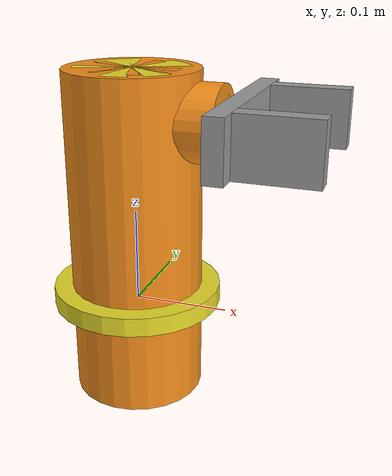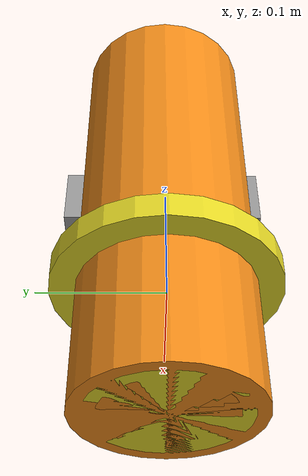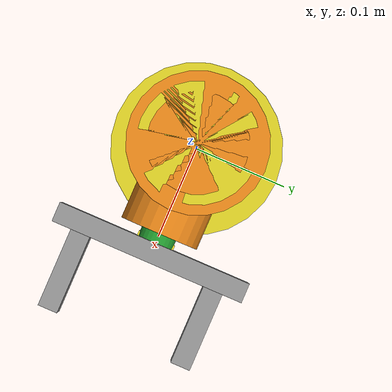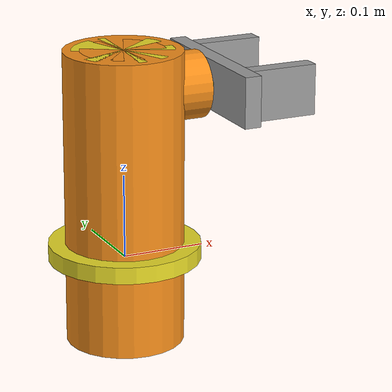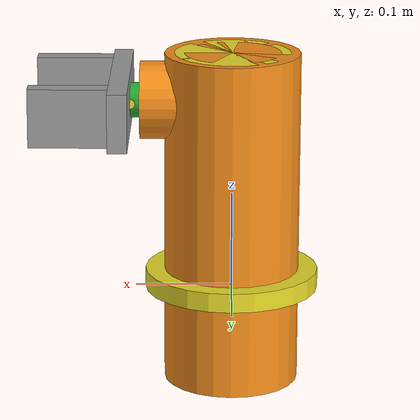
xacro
<?xml version="1.0"?>
<robot name="my_robot" xmlns:xacro="http://www.ros.org/wiki/xacro">

    <xacro:include filename="arm.xacro" />
    <xacro:include filename="arm_gazebo.xacro" />
    <xacro:include filename="gripper.xacro" />
    <xacro:include filename="gripper_gazebo.xacro" />

    <joint name="pitch_gripper_joint" type="fixed">
        <parent link="pitch_link" />
        <child link="gripper_base_link" />
        <origin xyz="0 0 0" rpy="0 0 ${pi/2}"/>
        <axis xyz="0 0 1" />
        <limit effort="100" velocity="100" />
        <dynamics friction="0.3" damping="0.3" />
    </joint>

</robot>

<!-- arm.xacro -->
<robot name="my_robot" xmlns:xacro="http://www.ros.org/wiki/xacro">

    <xacro:macro name="cylinder_link" params="name material radius length">
        <link name="${name}">
            <visual>
                <geometry>
                    <cylinder radius="${radius}" length="${length}" />
                </geometry>
                <origin xyz="0 0 ${length / 2.0}" rpy="0 0 0" />
                <material name="${material}" />
            </visual>
            <collision>
                <geometry>
                    <cylinder radius="${radius}" length="${length}"/>
                </geometry>
                <origin xyz="0 0 ${length / 2.0}" rpy="0 0 0" />
            </collision>
        <xacro:cylinder_inertia m="0.3" r="${radius}" h="${length}"
                        o_xyz="0 0 ${length / 2.0}" o_rpy="0 0 0" />
        </link>
    </xacro:macro>

    <xacro:cylinder_link name="arm_base_link" material="yellow" radius="0.09" length="0.02" />
    <xacro:cylinder_link name="vertical_prismatic_link1" material="orange" radius="0.07" length="0.35" />
    <xacro:cylinder_link name="vertical_prismatic_link2" material="yellow" radius="0.06" length="0.35" />
    <xacro:cylinder_link name="vertical_prismatic_link3" material="orange" radius="0.05" length="0.35" />

    <xacro:cylinder_link name="horizontal_prismatic_link1" material="orange" radius="0.04" length="0.125" />
    <xacro:cylinder_link name="horizontal_prismatic_link2" material="yellow" radius="0.03" length="0.125" />
    <xacro:cylinder_link name="horizontal_prismatic_link3" material="orange" radius="0.02" length="0.125" />
    <xacro:cylinder_link name="roll_link" material="greenish" radius="0.018" length="0.01" />

    <link name="pitch_link">
        <visual>
            <geometry>
                <cylinder radius="0.005" length="0.038" />
            </geometry>
            <origin xyz="0 0 0" rpy="${pi/2} 0 0" />
            <material name="yellow" />
        </visual>
        <collision>
            <geometry>
                <cylinder radius="0.005" length="0.038"/>
            </geometry>
            <origin xyz="0 0 0" rpy="${pi/2} 0 0" />
        </collision>
    <xacro:cylinder_inertia m="0.3" r="0.005" h="0.038"
                    o_xyz="0 0 0" o_rpy="${pi/2} 0 0" />
    </link>

    <joint name="arm_base_prismatic1_joint" type="fixed">
        <parent link="arm_base_link" />
        <child link="vertical_prismatic_link1" />
        <origin xyz="0 0 -0.1" rpy="0 0 0" />
        <axis xyz="0 0 1" />
    </joint>

    <joint name="vertical_prismatic1_2_joint" type="prismatic">
        <parent link="vertical_prismatic_link1" />
        <child link="vertical_prismatic_link2" />
        <origin xyz="0 0 0" rpy="0 0 0" />
        <axis xyz="0 0 1" />
        <limit lower="0" upper="0.35" effort="100" velocity="100" />
        <dynamics friction="0.3" damping="0.3" />
    </joint>

    <joint name="vertical_prismatic2_3_joint" type="prismatic">
        <parent link="vertical_prismatic_link2" />
        <child link="vertical_prismatic_link3" />
        <origin xyz="0 0 0" rpy="0 0 0" />
        <axis xyz="0 0 1" />
        <mimic joint="vertical_prismatic1_2_joint" multiplier="1" offset="0"/>
        <limit lower="0" upper="0.35" effort="100" velocity="100" />
        <dynamics friction="0.3" damping="0.3" />
    </joint>

    <joint name="horizontal_vertical_prismatic_joint" type="fixed">
        <parent link="vertical_prismatic_link3" />
        <child link="horizontal_prismatic_link1" />
        <origin xyz="-0.03 0 ${0.35 - 0.05}" rpy="0 ${pi/2} 0" />
    </joint>

    <joint name="horizontal_prismatic1_2_joint" type="prismatic">
        <parent link="horizontal_prismatic_link1" />
        <child link="horizontal_prismatic_link2" />
        <origin xyz="0 0 0" rpy="0 0 0" />
        <axis xyz="0 0 1" />
        <limit lower="0" upper="0.125" effort="100" velocity="100" />
        <dynamics friction="0.3" damping="0.3" />
    </joint>

    <joint name="horizontal_prismatic2_3_joint" type="prismatic">
        <parent link="horizontal_prismatic_link2" />
        <child link="horizontal_prismatic_link3" />
        <origin xyz="0 0 0" rpy="0 0 0" />
        <axis xyz="0 0 1" />
        <mimic joint="horizontal_prismatic1_2_joint" multiplier="1" offset="0"/>
        <limit lower="0" upper="0.1" effort="100" velocity="100" />
        <dynamics friction="0.3" damping="0.3" />
    </joint>

    <joint name="horizontal_prismatic3_roll_joint" type="continuous">
        <parent link="horizontal_prismatic_link3" />
        <child link="roll_link" />
        <origin xyz="0 0 0.125" rpy="0 0 0" />
        <axis xyz="0 0 1" />
        <limit effort="100" velocity="100" />
        <dynamics friction="0.3" damping="0.3" />
    </joint>

    <joint name="roll_pitch_joint" type="revolute">
        <parent link="roll_link" />
        <child link="pitch_link" />
        <origin xyz="0 0 0.01" rpy="0 0 0" />
        <axis xyz="0 1 0" />
        <limit lower="${-pi/2}" upper="${pi/2}" effort="100" velocity="100" />
        <dynamics friction="0.3" damping="0.3" />
    </joint>

</robot>

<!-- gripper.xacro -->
<robot xmlns:xacro="http://www.ros.org/wiki/xacro">

    <link name="gripper_base_link">
        <visual>
            <geometry>
                <box size="0.2 0.06 0.02"/>
            </geometry>
            <origin xyz="0 0 0.01" rpy="0 0 0"/>
            <material name="grey"/>
        </visual>
        <collision>
            <geometry>
                <box size="0.2 0.06 0.02"/>
            </geometry>
            <origin xyz="0 0 0.01" rpy="0 0 0"/>
        </collision>
        <xacro:box_inertia m="0.1" x="0.2" y="0.06" z="0.02"
                        o_xyz="0 0 0.01" o_rpy="0 0 0" />
    </link>

    <link name="gripper_left_finger_link">
        <visual>
            <geometry>
                <box size="0.02 0.06 0.08"/>
            </geometry>
            <origin xyz="0 0 0.04" rpy="0 0 0"/>
            <material name="grey"/>
        </visual>
        <collision>
            <geometry>
                <box size="0.02 0.06 0.08"/>
            </geometry>
            <origin xyz="0 0 0.04" rpy="0 0 0"/>
        </collision>
        <xacro:box_inertia m="0.1" x="0.02" y="0.06" z="0.08"
                        o_xyz="0 0 0.04" o_rpy="0 0 0" />
    </link>

    <joint name="gripper_left_finger_joint" type="prismatic">
        <parent link="gripper_base_link"/>
        <child link="gripper_left_finger_link"/>
        <origin xyz="-0.07 0 0.02" rpy="0 0 0"/>
        <axis xyz="1 0 0"/>
        <limit lower="0" upper="0.06" effort="1000.0" velocity="1.0"/>
        <dynamics damping="0.1" friction="0.1"/>
    </joint>

    <link name="gripper_right_finger_link">
        <visual>
            <geometry>
                <box size="0.02 0.06 0.08"/>
            </geometry>
            <origin xyz="0 0 0.04" rpy="0 0 0"/>
            <material name="grey"/>
        </visual>
        <collision>
            <geometry>
                <box size="0.02 0.06 0.08"/>
            </geometry>
            <origin xyz="0 0 0.04" rpy="0 0 0"/>
        </collision>
        <xacro:box_inertia m="0.1" x="0.02" y="0.06" z="0.08"
                        o_xyz="0 0 0.04" o_rpy="0 0 0" />
    </link>

    <joint name="gripper_right_finger_joint" type="prismatic">
        <parent link="gripper_base_link"/>
        <child link="gripper_right_finger_link"/>
        <origin xyz="0.07 0 0.02" rpy="0 0 0"/>
        <axis xyz="-1 0 0"/>
        <mimic joint="gripper_left_finger_joint" multiplier="1" offset="0"/>
        <limit lower="0.0" upper="0.06" effort="1000.0" velocity="1.0"/>
        <dynamics damping="0.1" friction="0.1"/>
    </joint>

</robot>
